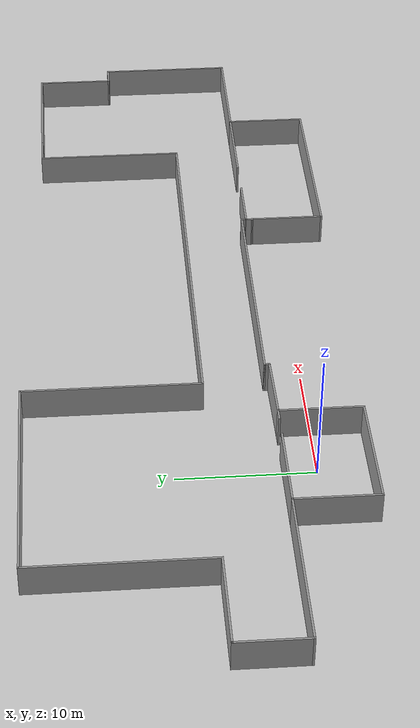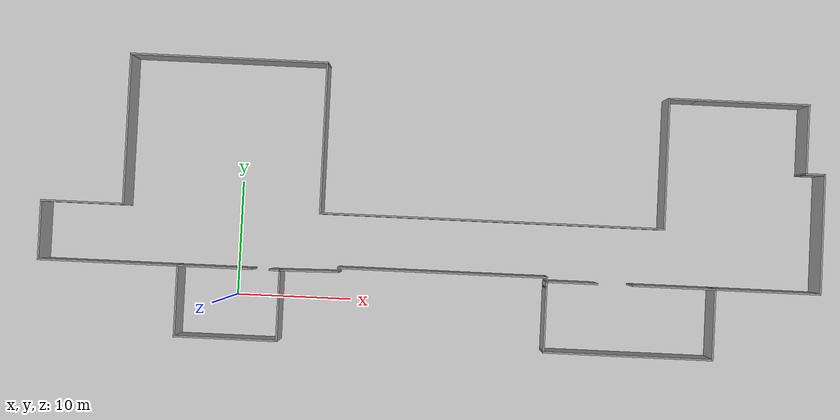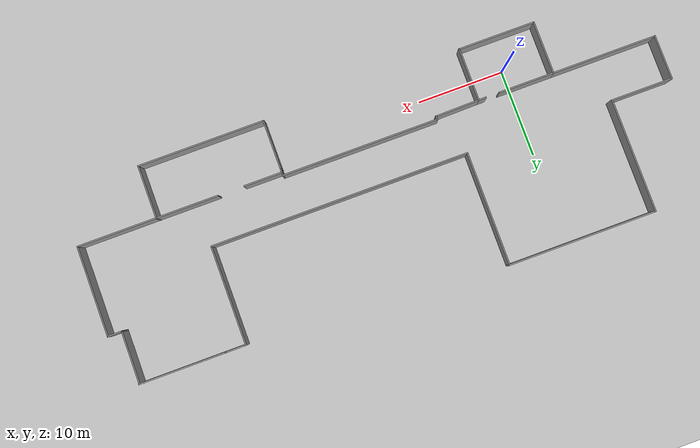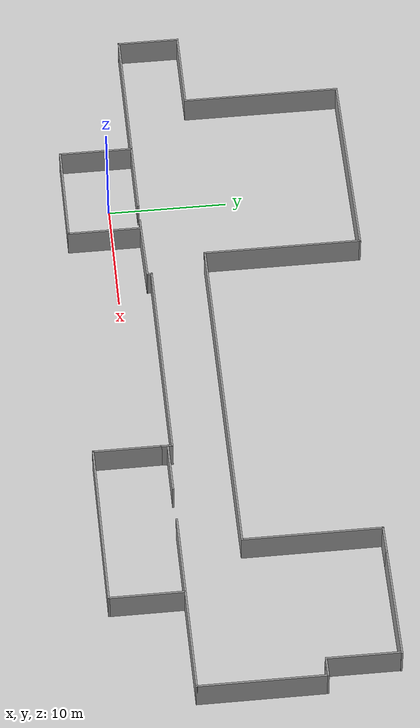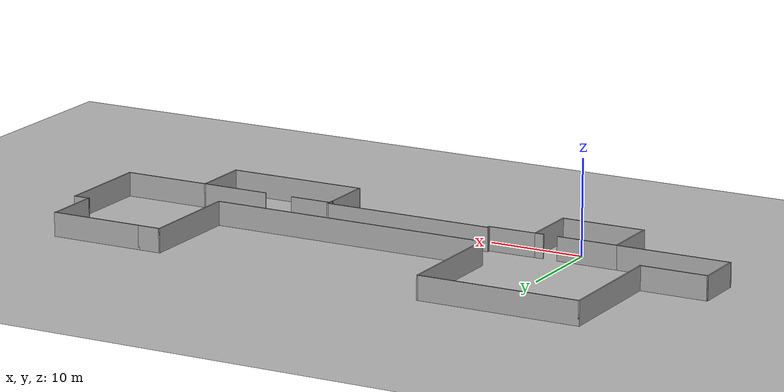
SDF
<sdf version="1.7">
 <world name="default">
  <light name="sun" type="directional">
   <pose>0 0 10 0 -0 0</pose>
   <diffuse>0.8 0.8 0.8 1</diffuse>
   <specular>0.2 0.2 0.2 1</specular>
   <attenuation>
    <range>1000</range>
    <constant>0.9</constant>
    <linear>0.01</linear>
    <quadratic>0.001</quadratic>
   </attenuation>
   <direction>-0.5 0.1 -0.9</direction>
   <spot><inner_angle>0</inner_angle><outer_angle>0</outer_angle><falloff>0</falloff></spot>
  </light>
  <model name="ground_plane">
   <static>1</static>
   <link name="link">
    <collision name="collision">
     <geometry><plane><normal>0 0 1</normal><size>100 100</size></plane></geometry>
     <surface>
      <contact><collide_bitmask>65535</collide_bitmask></contact>
      <friction><ode><mu>100</mu><mu2>50</mu2></ode></friction>
     </surface>
    </collision>
    <visual name="visual">
     <cast_shadows>0</cast_shadows>
     <geometry><plane><normal>0 0 1</normal><size>100 100</size></plane></geometry>
     <material>
      <script><uri>file://media/materials/scripts/gazebo.material</uri><name>Gazebo/Grey</name></script>
     </material>
    </visual>
   </link>
  </model>
  <gravity>0 0 -9.8</gravity>
  <magnetic_field>6e-06 2.3e-05 -4.2e-05</magnetic_field>
  <atmosphere type="adiabatic"/>
  <physics type="ode">
   <max_step_size>0.001</max_step_size>
   <real_time_factor>1</real_time_factor>
   <real_time_update_rate>1000</real_time_update_rate>
  </physics>
  <scene><ambient>0.4 0.4 0.4 1</ambient><background>0.7 0.7 0.7 1</background><shadows>1</shadows></scene>
  <spherical_coordinates>
   <surface_model>EARTH_WGS84</surface_model>
   <latitude_deg>0</latitude_deg>
   <longitude_deg>0</longitude_deg>
   <elevation>0</elevation>
   <heading_deg>0</heading_deg>
  </spherical_coordinates>
  <model name="lighting_technology_workshop">
   <pose>16.8951 11.491 0 0 -0 0</pose>
   <link name="Wall_100">
    <collision name="Wall_100_Collision">
     <geometry><box><size>6.25 0.15 2.5</size></box></geometry>
     <pose>0 0 1.25 0 -0 0</pose>
    </collision>
    <visual name="Wall_100_Visual">
     <pose>0 0 1.25 0 -0 0</pose>
     <geometry><box><size>6.25 0.15 2.5</size></box></geometry>
     <material>
      <script><uri>file://media/materials/scripts/gazebo.material</uri><name>Gazebo/Grey</name></script>
      <ambient>1 1 1 1</ambient>
     </material>
     <meta><layer>0</layer></meta>
    </visual>
    <pose>-21.7896 -12.1362 0 0 -0 -1.5708</pose>
   </link>
   <link name="Wall_101">
    <collision name="Wall_101_Collision">
     <geometry><box><size>9 0.15 2.5</size></box></geometry>
     <pose>0 0 1.25 0 -0 0</pose>
    </collision>
    <visual name="Wall_101_Visual">
     <pose>0 0 1.25 0 -0 0</pose>
     <geometry><box><size>9 0.15 2.5</size></box></geometry>
     <material>
      <script><uri>file://media/materials/scripts/gazebo.material</uri><name>Gazebo/Grey</name></script>
      <ambient>1 1 1 1</ambient>
     </material>
     <meta><layer>0</layer></meta>
    </visual>
    <pose>-17.3646 -15.1862 0 0 -0 0</pose>
   </link>
   <link name="Wall_102">
    <collision name="Wall_102_Collision">
     <geometry><box><size>6.25 0.15 2.5</size></box></geometry>
     <pose>0 0 1.25 0 -0 0</pose>
    </collision>
    <visual name="Wall_102_Visual">
     <pose>0 0 1.25 0 -0 0</pose>
     <geometry><box><size>6.25 0.15 2.5</size></box></geometry>
     <material>
      <script><uri>file://media/materials/scripts/gazebo.material</uri><name>Gazebo/Grey</name></script>
      <ambient>1 1 1 1</ambient>
     </material>
     <meta><layer>0</layer></meta>
    </visual>
    <pose>-12.9396 -12.1362 0 0 -0 1.5708</pose>
   </link>
   <link name="Wall_103">
    <collision name="Wall_103_Collision">
     <geometry><box><size>1 0.15 2.5</size></box></geometry>
     <pose>0 0 1.25 0 -0 0</pose>
    </collision>
    <visual name="Wall_103_Visual">
     <pose>0 0 1.25 0 -0 0</pose>
     <geometry><box><size>1 0.15 2.5</size></box></geometry>
     <material>
      <script><uri>file://media/materials/scripts/gazebo.material</uri><name>Gazebo/Grey</name></script>
      <ambient>1 1 1 1</ambient>
     </material>
     <meta><layer>0</layer></meta>
    </visual>
    <pose>-13.3646 -9.08618 0 0 -0 3.14159</pose>
   </link>
   <link name="Wall_105">
    <collision name="Wall_105_Collision">
     <geometry><box><size>12.25 0.15 2.5</size></box></geometry>
     <pose>0 0 1.25 0 -0 0</pose>
    </collision>
    <visual name="Wall_105_Visual">
     <pose>0 0 1.25 0 -0 0</pose>
     <geometry><box><size>12.25 0.15 2.5</size></box></geometry>
     <material>
      <script><uri>file://media/materials/scripts/gazebo.material</uri><name>Gazebo/Grey</name></script>
      <ambient>1 1 1 1</ambient>
     </material>
     <meta><layer>0</layer></meta>
    </visual>
    <pose>-27.8396 -9.08618 0 0 -0 3.14159</pose>
   </link>
   <link name="Wall_106">
    <collision name="Wall_106_Collision">
     <geometry><box><size>5.25 0.15 2.5</size></box></geometry>
     <pose>0 0 1.25 0 -0 0</pose>
    </collision>
    <visual name="Wall_106_Visual">
     <pose>0 0 1.25 0 -0 0</pose>
     <geometry><box><size>5.25 0.15 2.5</size></box></geometry>
     <material>
      <script><uri>file://media/materials/scripts/gazebo.material</uri><name>Gazebo/Grey</name></script>
      <ambient>1 1 1 1</ambient>
     </material>
     <meta><layer>0</layer></meta>
    </visual>
    <pose>-33.8896 -6.53618 0 0 -0 1.5708</pose>
   </link>
   <link name="Wall_110">
    <collision name="Wall_110_Collision">
     <geometry><box><size>4.5 0.15 2.5</size></box></geometry>
     <pose>0 0 1.25 0 -0 0</pose>
    </collision>
    <visual name="Wall_110_Visual">
     <pose>0 0 1.25 0 -0 0</pose>
     <geometry><box><size>4.5 0.15 2.5</size></box></geometry>
     <material>
      <script><uri>file://media/materials/scripts/gazebo.material</uri><name>Gazebo/Grey</name></script>
      <ambient>1 1 1 1</ambient>
     </material>
     <meta><layer>0</layer></meta>
    </visual>
    <pose>12.3788 -8.99188 0 0 -0 3.14159</pose>
   </link>
   <link name="Wall_113">
    <collision name="Wall_113_Collision">
     <geometry><box><size>7.25 0.15 2.5</size></box></geometry>
     <pose>0 0 1.25 0 -0 0</pose>
    </collision>
    <visual name="Wall_113_Visual">
     <pose>0 0 1.25 0 -0 0</pose>
     <geometry><box><size>7.25 0.15 2.5</size></box></geometry>
     <material>
      <script><uri>file://media/materials/scripts/gazebo.material</uri><name>Gazebo/Grey</name></script>
      <ambient>1 1 1 1</ambient>
     </material>
     <meta><layer>0</layer></meta>
    </visual>
    <pose>21.2396 -8.98375 0 0 -0 0</pose>
   </link>
   <link name="Wall_115">
    <collision name="Wall_115_Collision">
     <geometry><box><size>6.25 0.15 2.5</size></box></geometry>
     <pose>0 0 1.25 0 -0 0</pose>
    </collision>
    <visual name="Wall_115_Visual">
     <pose>0 0 1.25 0 -0 0</pose>
     <geometry><box><size>6.25 0.15 2.5</size></box></geometry>
     <material>
      <script><uri>file://media/materials/scripts/gazebo.material</uri><name>Gazebo/Grey</name></script>
      <ambient>1 1 1 1</ambient>
     </material>
     <meta><layer>0</layer></meta>
    </visual>
    <pose>24.7896 -12.0337 0 0 -0 -1.5708</pose>
   </link>
   <link name="Wall_116">
    <collision name="Wall_116_Collision">
     <geometry><box><size>14.75 0.15 2.5</size></box></geometry>
     <pose>0 0 1.25 0 -0 0</pose>
    </collision>
    <visual name="Wall_116_Visual">
     <pose>0 0 1.25 0 -0 0</pose>
     <geometry><box><size>14.75 0.15 2.5</size></box></geometry>
     <material>
      <script><uri>file://media/materials/scripts/gazebo.material</uri><name>Gazebo/Grey</name></script>
      <ambient>1 1 1 1</ambient>
     </material>
     <meta><layer>0</layer></meta>
    </visual>
    <pose>17.4896 -15.0837 0 0 -0 3.14159</pose>
   </link>
   <link name="Wall_117">
    <collision name="Wall_117_Collision">
     <geometry><box><size>5.75 0.15 2.5</size></box></geometry>
     <pose>0 0 1.25 0 -0 0</pose>
    </collision>
    <visual name="Wall_117_Visual">
     <pose>0 0 1.25 0 -0 0</pose>
     <geometry><box><size>5.75 0.15 2.5</size></box></geometry>
     <material>
      <script><uri>file://media/materials/scripts/gazebo.material</uri><name>Gazebo/Grey</name></script>
      <ambient>1 1 1 1</ambient>
     </material>
     <meta><layer>0</layer></meta>
    </visual>
    <pose>10.1896 -12.2837 0 0 -0 1.5708</pose>
   </link>
   <link name="Wall_119">
    <collision name="Wall_119_Collision">
     <geometry><box><size>0.642071 0.15 2.5</size></box></geometry>
     <pose>0 0 1.25 0 -0 0</pose>
    </collision>
    <visual name="Wall_119_Visual">
     <pose>0 0 1.25 0 -0 0</pose>
     <geometry><box><size>0.642071 0.15 2.5</size></box></geometry>
     <material>
      <script><uri>file://media/materials/scripts/gazebo.material</uri><name>Gazebo/Grey</name></script>
      <ambient>1 1 1 1</ambient>
     </material>
     <meta><layer>0</layer></meta>
    </visual>
    <pose>10.1967 -9.23781 0 0 -0 -1.59957</pose>
   </link>
   <link name="Wall_122">
    <collision name="Wall_122_Collision">
     <geometry><box><size>0.5 0.15 2.5</size></box></geometry>
     <pose>0 0 1.25 0 -0 0</pose>
    </collision>
    <visual name="Wall_122_Visual">
     <pose>0 0 1.25 0 -0 0</pose>
     <geometry><box><size>0.5 0.15 2.5</size></box></geometry>
     <material>
      <script><uri>file://media/materials/scripts/gazebo.material</uri><name>Gazebo/Grey</name></script>
      <ambient>1 1 1 1</ambient>
     </material>
     <meta><layer>0</layer></meta>
    </visual>
    <pose>10.2038 -8.81688 0 0 -0 1.5708</pose>
   </link>
   <link name="Wall_124">
    <collision name="Wall_124_Collision">
     <geometry><box><size>18.25 0.15 2.5</size></box></geometry>
     <pose>0 0 1.25 0 -0 0</pose>
    </collision>
    <visual name="Wall_124_Visual">
     <pose>0 0 1.25 0 -0 0</pose>
     <geometry><box><size>18.25 0.15 2.5</size></box></geometry>
     <material>
      <script><uri>file://media/materials/scripts/gazebo.material</uri><name>Gazebo/Grey</name></script>
      <ambient>1 1 1 1</ambient>
     </material>
     <meta><layer>0</layer></meta>
    </visual>
    <pose>1.15379 -8.64188 0 0 -0 3.14159</pose>
   </link>
   <link name="Wall_126">
    <collision name="Wall_126_Collision">
     <geometry><box><size>0.5 0.15 2.5</size></box></geometry>
     <pose>0 0 1.25 0 -0 0</pose>
    </collision>
    <visual name="Wall_126_Visual">
     <pose>0 0 1.25 0 -0 0</pose>
     <geometry><box><size>0.5 0.15 2.5</size></box></geometry>
     <material>
      <script><uri>file://media/materials/scripts/gazebo.material</uri><name>Gazebo/Grey</name></script>
      <ambient>1 1 1 1</ambient>
     </material>
     <meta><layer>0</layer></meta>
    </visual>
    <pose>-7.89621 -8.81688 0 0 -0 -1.5708</pose>
   </link>
   <link name="Wall_127">
    <collision name="Wall_127_Collision">
     <geometry><box><size>5.19431 0.15 2.5</size></box></geometry>
     <pose>0 0 1.25 0 -0 0</pose>
    </collision>
    <visual name="Wall_127_Visual">
     <pose>0 0 1.25 0 -0 0</pose>
     <geometry><box><size>5.19431 0.15 2.5</size></box></geometry>
     <material>
      <script><uri>file://media/materials/scripts/gazebo.material</uri><name>Gazebo/Grey</name></script>
      <ambient>1 1 1 1</ambient>
     </material>
     <meta><layer>0</layer></meta>
    </visual>
    <pose>-10.4179 -9.03903 0 0 -0 -3.1229</pose>
   </link>
   <link name="Wall_129">
    <collision name="Wall_129_Collision">
     <geometry><box><size>7.25 0.15 2.5</size></box></geometry>
     <pose>0 0 1.25 0 -0 0</pose>
    </collision>
    <visual name="Wall_129_Visual">
     <pose>0 0 1.25 0 -0 0</pose>
     <geometry><box><size>7.25 0.15 2.5</size></box></geometry>
     <material>
      <script><uri>file://media/materials/scripts/gazebo.material</uri><name>Gazebo/Grey</name></script>
      <ambient>1 1 1 1</ambient>
     </material>
     <meta><layer>0</layer></meta>
    </visual>
    <pose>-30.3396 -3.98618 0 0 -0 0</pose>
   </link>
   <link name="Wall_130">
    <collision name="Wall_130_Collision">
     <geometry><box><size>13.25 0.15 2.5</size></box></geometry>
     <pose>0 0 1.25 0 -0 0</pose>
    </collision>
    <visual name="Wall_130_Visual">
     <pose>0 0 1.25 0 -0 0</pose>
     <geometry><box><size>13.25 0.15 2.5</size></box></geometry>
     <material>
      <script><uri>file://media/materials/scripts/gazebo.material</uri><name>Gazebo/Grey</name></script>
      <ambient>1 1 1 1</ambient>
     </material>
     <meta><layer>0</layer></meta>
    </visual>
    <pose>-26.7896 2.56382 0 0 -0 1.5708</pose>
   </link>
   <link name="Wall_131">
    <collision name="Wall_131_Collision">
     <geometry><box><size>17.25 0.15 2.5</size></box></geometry>
     <pose>0 0 1.25 0 -0 0</pose>
    </collision>
    <visual name="Wall_131_Visual">
     <pose>0 0 1.25 0 -0 0</pose>
     <geometry><box><size>17.25 0.15 2.5</size></box></geometry>
     <material>
      <script><uri>file://media/materials/scripts/gazebo.material</uri><name>Gazebo/Grey</name></script>
      <ambient>1 1 1 1</ambient>
     </material>
     <meta><layer>0</layer></meta>
    </visual>
    <pose>-18.2396 9.11382 0 0 -0 0</pose>
   </link>
   <link name="Wall_132">
    <collision name="Wall_132_Collision">
     <geometry><box><size>13.25 0.15 2.5</size></box></geometry>
     <pose>0 0 1.25 0 -0 0</pose>
    </collision>
    <visual name="Wall_132_Visual">
     <pose>0 0 1.25 0 -0 0</pose>
     <geometry><box><size>13.25 0.15 2.5</size></box></geometry>
     <material>
      <script><uri>file://media/materials/scripts/gazebo.material</uri><name>Gazebo/Grey</name></script>
      <ambient>1 1 1 1</ambient>
     </material>
     <meta><layer>0</layer></meta>
    </visual>
    <pose>-9.68964 2.56382 0 0 -0 -1.5708</pose>
   </link>
   <link name="Wall_134">
    <collision name="Wall_134_Collision">
     <geometry><box><size>9.25 0.15 2.5</size></box></geometry>
     <pose>0 0 1.25 0 -0 0</pose>
    </collision>
    <visual name="Wall_134_Visual">
     <pose>0 0 1.25 0 -0 0</pose>
     <geometry><box><size>9.25 0.15 2.5</size></box></geometry>
     <material>
      <script><uri>file://media/materials/scripts/gazebo.material</uri><name>Gazebo/Grey</name></script>
      <ambient>1 1 1 1</ambient>
     </material>
     <meta><layer>0</layer></meta>
    </visual>
    <pose>29.3396 -8.98375 0 0 -0 0</pose>
   </link>
   <link name="Wall_135">
    <collision name="Wall_135_Collision">
     <geometry><box><size>10.5 0.15 2.5</size></box></geometry>
     <pose>0 0 1.25 0 -0 0</pose>
    </collision>
    <visual name="Wall_135_Visual">
     <pose>0 0 1.25 0 -0 0</pose>
     <geometry><box><size>10.5 0.15 2.5</size></box></geometry>
     <material>
      <script><uri>file://media/materials/scripts/gazebo.material</uri><name>Gazebo/Grey</name></script>
      <ambient>1 1 1 1</ambient>
     </material>
     <meta><layer>0</layer></meta>
    </visual>
    <pose>33.8896 -3.80875 0 0 -0 1.5708</pose>
   </link>
   <link name="Wall_137">
    <collision name="Wall_137_Collision">
     <geometry><box><size>1.75 0.15 2.5</size></box></geometry>
     <pose>0 0 1.25 0 -0 0</pose>
    </collision>
    <visual name="Wall_137_Visual">
     <pose>0 0 1.25 0 -0 0</pose>
     <geometry><box><size>1.75 0.15 2.5</size></box></geometry>
     <material>
      <script><uri>file://media/materials/scripts/gazebo.material</uri><name>Gazebo/Grey</name></script>
      <ambient>1 1 1 1</ambient>
     </material>
     <meta><layer>0</layer></meta>
    </visual>
    <pose>33.0896 1.36625 0 0 -0 3.14159</pose>
   </link>
   <link name="Wall_138">
    <collision name="Wall_138_Collision">
     <geometry><box><size>6 0.15 2.5</size></box></geometry>
     <pose>0 0 1.25 0 -0 0</pose>
    </collision>
    <visual name="Wall_138_Visual">
     <pose>0 0 1.25 0 -0 0</pose>
     <geometry><box><size>6 0.15 2.5</size></box></geometry>
     <material>
      <script><uri>file://media/materials/scripts/gazebo.material</uri><name>Gazebo/Grey</name></script>
      <ambient>1 1 1 1</ambient>
     </material>
     <meta><layer>0</layer></meta>
    </visual>
    <pose>32.2979 4.29125 0 0 -0 1.56799</pose>
   </link>
   <link name="Wall_142">
    <collision name="Wall_142_Collision">
     <geometry><box><size>30 0.15 2.5</size></box></geometry>
     <pose>0 0 1.25 0 -0 0</pose>
    </collision>
    <visual name="Wall_142_Visual">
     <pose>0 0 1.25 0 -0 0</pose>
     <geometry><box><size>30 0.15 2.5</size></box></geometry>
     <material>
      <script><uri>file://media/materials/scripts/gazebo.material</uri><name>Gazebo/Grey</name></script>
      <ambient>1 1 1 1</ambient>
     </material>
     <meta><layer>0</layer></meta>
    </visual>
    <pose>5.23536 -3.98618 0 0 -0 0</pose>
   </link>
   <link name="Wall_144">
    <collision name="Wall_144_Collision">
     <geometry><box><size>11.5 0.15 2.5</size></box></geometry>
     <pose>0 0 1.25 0 -0 0</pose>
    </collision>
    <visual name="Wall_144_Visual">
     <pose>0 0 1.25 0 -0 0</pose>
     <geometry><box><size>11.5 0.15 2.5</size></box></geometry>
     <material>
      <script><uri>file://media/materials/scripts/gazebo.material</uri><name>Gazebo/Grey</name></script>
      <ambient>1 1 1 1</ambient>
     </material>
     <meta><layer>0</layer></meta>
    </visual>
    <pose>20.1604 1.68882 0 0 -0 1.5708</pose>
   </link>
   <link name="Wall_145">
    <collision name="Wall_145_Collision">
     <geometry><box><size>2.5 0.15 2.5</size></box></geometry>
     <pose>0 0 1.25 0 -0 0</pose>
    </collision>
    <visual name="Wall_145_Visual">
     <pose>0 0 1.25 0 -0 0</pose>
     <geometry><box><size>2.5 0.15 2.5</size></box></geometry>
     <material>
      <script><uri>file://media/materials/scripts/gazebo.material</uri><name>Gazebo/Grey</name></script>
      <ambient>1 1 1 1</ambient>
     </material>
     <meta><layer>0</layer></meta>
    </visual>
    <pose>21.3354 7.36382 0 0 -0 0</pose>
   </link>
   <link name="Wall_147">
    <collision name="Wall_147_Collision">
     <geometry><box><size>10 0.15 2.5</size></box></geometry>
     <pose>0 0 1.25 0 -0 0</pose>
    </collision>
    <visual name="Wall_147_Visual">
     <pose>0 0 1.25 0 -0 0</pose>
     <geometry><box><size>10 0.15 2.5</size></box></geometry>
     <material>
      <script><uri>file://media/materials/scripts/gazebo.material</uri><name>Gazebo/Grey</name></script>
      <ambient>1 1 1 1</ambient>
     </material>
     <meta><layer>0</layer></meta>
    </visual>
    <pose>27.4354 7.36382 0 0 -0 0</pose>
   </link>
   <link name="Wall_98">
    <collision name="Wall_98_Collision">
     <geometry><box><size>6.5 0.15 2.5</size></box></geometry>
     <pose>0 0 1.25 0 -0 0</pose>
    </collision>
    <visual name="Wall_98_Visual">
     <pose>0 0 1.25 0 -0 0</pose>
     <geometry><box><size>6.5 0.15 2.5</size></box></geometry>
     <material>
      <script><uri>file://media/materials/scripts/gazebo.material</uri><name>Gazebo/Grey</name></script>
      <ambient>1 1 1 1</ambient>
     </material>
     <meta><layer>0</layer></meta>
    </visual>
    <pose>-18.6146 -9.08618 0 0 -0 3.14159</pose>
   </link>
   <static>1</static>
  </model>
 </world>
</sdf>
